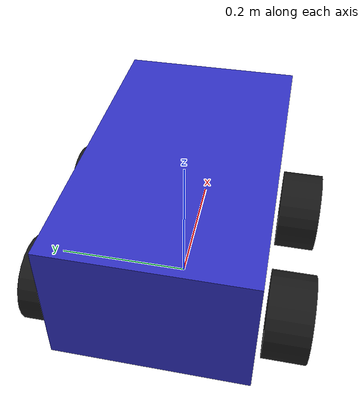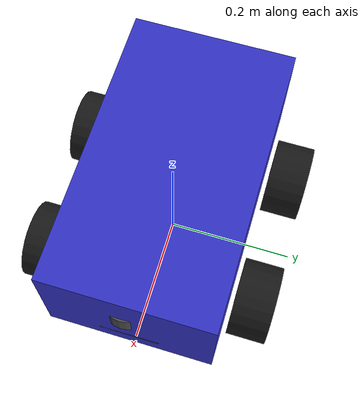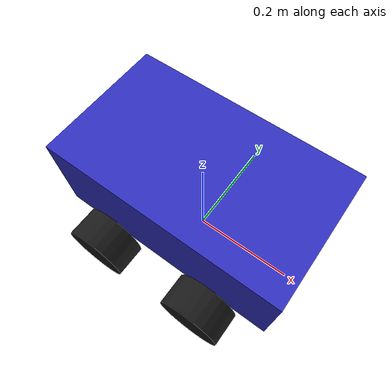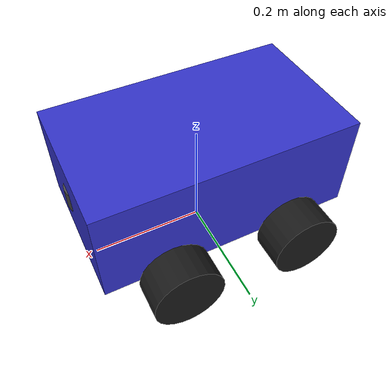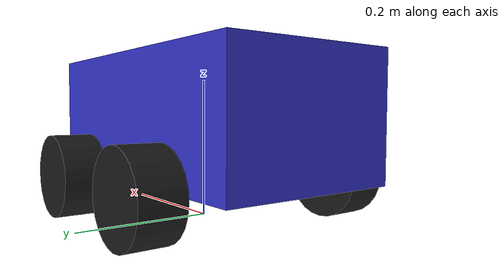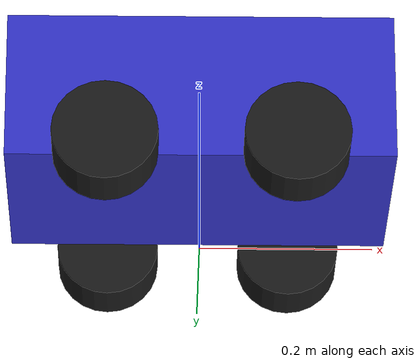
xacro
<?xml version="1.0"?>
<robot xmlns:xacro="http://www.ros.org/wiki/xacro" name="bot">

  <!-- Constants -->
  <xacro:property name="base_length" value="0.445"/>  <!-- 0.445 m = 17.5 in -->
  <xacro:property name="base_width" value="0.255"/>   <!-- 0.255 m = 10.0 in -->
  <xacro:property name="base_height" value="0.176"/>  <!-- chassis height, 0.176 m = 6.9 in -->
  <xacro:property name="ground_clearance" value="0.06"/>
  <xacro:property name="wheel_radius" value="0.06"/>  <!-- 0.06 m = 2.4 in radius (4.7 in dia) -->
  <xacro:property name="wheel_width" value="0.06"/>  <!-- 0.06 m = 2.4 in -->
  <xacro:property name="wheelbase" value="0.216"/>   <!-- front-to-rear axle spacing, measured 0.216 m = 8.5 in (2026-09-30; was a 0.33 estimate) -->
  <xacro:property name="track_width" value="0.33"/>  <!-- left-to-right wheel-centre spacing, measured 0.33 m = 13.0 in (2026-09-30; was 0.32) -->
  <xacro:property name="mass_base" value="3.545729"/>  <!-- measured 3.546 kg = 7.8 lb (2026-09-30; was 3.2) -->
  <xacro:property name="mass_wheel" value="0.2"/>   <!-- 0.2 kg = 0.44 lb each -->
  <xacro:property name="oak_width" value="0.091"/>
  <xacro:property name="oak_height" value="0.028"/>
  <xacro:property name="oak_depth" value="0.0175"/>
  <xacro:property name="oak_bottom_height" value="0.09"/>
  <xacro:property name="oak_front_x" value="${base_length/2}"/>
  <xacro:property name="chassis_front_x" value="${oak_front_x - 0.03}"/>
  <xacro:property name="lidar_radius" value="0.0385"/>
  <xacro:property name="lidar_body_height" value="0.03885"/>
  <xacro:property name="lidar_top_height" value="${oak_bottom_height + oak_height + 0.05}"/>
  <xacro:property name="lidar_plane_below_top" value="0.013"/>

  <!-- Base Link (Chassis) -->
  <link name="base_link">
    <inertial>
      <origin xyz="0 0 0" rpy="0 0 0"/>
      <mass value="${mass_base}"/>
      <inertia ixx="${mass_base/12 * (base_width*base_width + base_height*base_height)}" ixy="0" ixz="0"
               iyy="${mass_base/12 * (base_length*base_length + base_height*base_height)}" iyz="0"
               izz="${mass_base/12 * (base_length*base_length + base_width*base_width)}"/>
    </inertial>
    <visual>
      <origin xyz="0 0 ${ground_clearance + base_height/2}" rpy="0 0 0"/>
      <geometry>
        <box size="${base_length} ${base_width} ${base_height}"/>
      </geometry>
      <material name="chassis_color">
        <color rgba="0.2 0.2 0.8 1.0"/>  <!-- Blue -->
      </material>
    </visual>
    <collision name="base_collision">
      <origin xyz="0 0 ${ground_clearance + base_height/2}" rpy="0 0 0"/>
      <geometry>
        <box size="${base_length} ${base_width} ${base_height}"/>
      </geometry>
    </collision>
  </link>

  <xacro:macro name="wheel" params="prefix x_reflect y_reflect">
    <link name="${prefix}_wheel">
      <inertial>
        <origin xyz="0 0 0" rpy="0 0 0"/>
        <mass value="${mass_wheel}"/>
        <inertia ixx="0.01" ixy="0" ixz="0" iyy="0.01" iyz="0" izz="0.01"/>
      </inertial>
      <visual>
        <origin xyz="0 0 0" rpy="${pi/2} 0 0"/>
        <geometry>
          <cylinder radius="${wheel_radius}" length="${wheel_width}"/>
        </geometry>
        <material name="wheel_color">
          <color rgba="0.1 0.1 0.1 1.0"/>  <!-- Black -->
        </material>
      </visual>
      <collision>
        <origin xyz="0 0 0" rpy="${pi/2} 0 0"/>
        <geometry>
          <cylinder radius="${wheel_radius}" length="${wheel_width}"/>
        </geometry>
      </collision>
    </link>

    <joint name="${prefix}_wheel_joint" type="continuous">
      <origin xyz="${x_reflect * wheelbase/2} ${y_reflect * track_width/2} ${wheel_radius}" rpy="0 0 0"/>
      <parent link="base_link"/>
      <child link="${prefix}_wheel"/>
      <axis xyz="0 1 0"/>
      <dynamics damping="0.1" friction="0.0"/>
    </joint>

    <gazebo reference="${prefix}_wheel">
      <material>Gazebo/Black</material>
      <mu1>0.05</mu1>
      <mu2>1.0</mu2>
      <fdir1>0 0 1</fdir1>
    </gazebo>
  </xacro:macro>

  <xacro:wheel prefix="front_left" x_reflect="1" y_reflect="1"/>
  <xacro:wheel prefix="rear_left" x_reflect="-1" y_reflect="1"/>
  <xacro:wheel prefix="front_right" x_reflect="1" y_reflect="-1"/>
  <xacro:wheel prefix="rear_right" x_reflect="-1" y_reflect="-1"/>

  <!-- Lidar Link -->
  <link name="lidar_link">
    <inertial>
      <origin xyz="0 0 0" rpy="0 0 0"/>
      <mass value="0.2"/>
      <inertia ixx="0.001" ixy="0" ixz="0" iyy="0.001" iyz="0" izz="0.001"/>
    </inertial>
    <visual>
      <origin xyz="0 0 ${lidar_plane_below_top - lidar_body_height/2}" rpy="0 0 0"/>
      <geometry>
        <cylinder radius="${lidar_radius}" length="${lidar_body_height}"/>
      </geometry>
      <material name="lidar_color">
        <color rgba="0.3 0.3 0.3 1.0"/>  <!-- Gray -->
      </material>
    </visual>
    <collision>
      <origin xyz="0 0 ${lidar_plane_below_top - lidar_body_height/2}" rpy="0 0 0"/>
      <geometry>
        <cylinder radius="${lidar_radius}" length="${lidar_body_height}"/>
      </geometry>
    </collision>
  </link>

  <!-- Camera Link -->
  <link name="camera_link">
    <inertial>
      <origin xyz="0 0 0" rpy="0 0 0"/>
      <mass value="0.1"/>
      <inertia ixx="0.0001" ixy="0" ixz="0" iyy="0.0001" iyz="0" izz="0.0001"/>
    </inertial>
    <visual>
      <origin xyz="0 0 0" rpy="0 0 0"/>
      <geometry>
        <box size="${oak_depth} ${oak_width} ${oak_height}"/>
      </geometry>
      <material name="camera_color">
        <color rgba="0.4 0.4 0.4 1.0"/>  <!-- Dark gray -->
      </material>
    </visual>
    <collision>
      <origin xyz="0 0 0" rpy="0 0 0"/>
      <geometry>
        <box size="${oak_depth} ${oak_width} ${oak_height}"/>
      </geometry>
    </collision>
  </link>

  <!-- IMU Link -->
  <link name="imu_link">
    <inertial>
      <origin xyz="0 0 0" rpy="0 0 0"/>
      <mass value="0.05"/>
      <inertia ixx="0.00001" ixy="0" ixz="0" iyy="0.00001" iyz="0" izz="0.00001"/>
    </inertial>
    <visual>
      <origin xyz="0 0 0" rpy="0 0 0"/>
      <geometry>
        <box size="0.02 0.02 0.01"/>
      </geometry>
      <material name="imu_color">
        <color rgba="0.9 0.1 0.1 1.0"/>  <!-- Red -->
      </material>
    </visual>
    <collision>
      <origin xyz="0 0 0" rpy="0 0 0"/>
      <geometry>
        <box size="0.02 0.02 0.01"/>
      </geometry>
    </collision>
  </link>

  <joint name="lidar_joint" type="fixed">
    <origin xyz="${oak_front_x - 0.035} ${oak_width/2 - 0.055} ${lidar_top_height - lidar_plane_below_top}" rpy="0 0 ${pi}"/>
    <parent link="base_link"/>
    <child link="lidar_link"/>
  </joint>

  <joint name="camera_joint" type="fixed">
    <origin xyz="${oak_front_x - oak_depth/2} 0 ${oak_bottom_height + oak_height/2}" rpy="0 0 0"/>
    <parent link="base_link"/>
    <child link="camera_link"/>
  </joint>

  <joint name="imu_joint" type="fixed">
    <origin xyz="${chassis_front_x - 0.115} ${base_width/2 - 0.125} 0.094" rpy="0 0 ${pi}"/>
    <parent link="base_link"/>
    <child link="imu_link"/>
  </joint>

  <link name="ultrasonic_left"/>
  <link name="ultrasonic_right"/>
  <joint name="ultrasonic_left_joint" type="fixed">
    <origin xyz="${chassis_front_x - 0.175} ${base_width/2} 0.09" rpy="0 0 ${pi/2}"/>
    <parent link="base_link"/>
    <child link="ultrasonic_left"/>
  </joint>
  <joint name="ultrasonic_right_joint" type="fixed">
    <origin xyz="${chassis_front_x - 0.175} ${-base_width/2} 0.09" rpy="0 0 ${-pi/2}"/>
    <parent link="base_link"/>
    <child link="ultrasonic_right"/>
  </joint>

  <!-- Gazebo plugins -->
  <gazebo reference="base_link">
    <material>Gazebo/Blue</material>
    <sensor name="base_contact_sensor" type="contact">
      <contact>
        <collision>base_collision</collision>
        <topic>/bot_contacts</topic>
      </contact>
      <update_rate>30</update_rate>
    </sensor>
  </gazebo>

  <gazebo reference="imu_link">
    <sensor name="imu_sensor" type="imu">
      <gz_frame_id>imu_link</gz_frame_id>
      <always_on>true</always_on>
      <update_rate>100</update_rate>
      <topic>/imu</topic>
      <imu>
        <angular_velocity>
          <x><noise type="gaussian"><mean>0.0</mean><stddev>0.0017</stddev></noise></x>
          <y><noise type="gaussian"><mean>0.0</mean><stddev>0.0017</stddev></noise></y>
          <z><noise type="gaussian"><mean>0.0</mean><stddev>0.0017</stddev></noise></z>
        </angular_velocity>
        <linear_acceleration>
          <x><noise type="gaussian"><mean>0.0</mean><stddev>0.0104</stddev></noise></x>
          <y><noise type="gaussian"><mean>0.0</mean><stddev>0.0104</stddev></noise></y>
          <z><noise type="gaussian"><mean>0.0</mean><stddev>0.0104</stddev></noise></z>
        </linear_acceleration>
      </imu>
    </sensor>
  </gazebo>

  <gazebo>
    <plugin filename="gz-sim-diff-drive-system" name="gz::sim::systems::DiffDrive">
      <left_joint>front_left_wheel_joint</left_joint>
      <left_joint>rear_left_wheel_joint</left_joint>
      <right_joint>front_right_wheel_joint</right_joint>
      <right_joint>rear_right_wheel_joint</right_joint>
      <wheel_separation>${track_width}</wheel_separation>
      <wheel_radius>${wheel_radius}</wheel_radius>
      <max_wheel_torque>0.73</max_wheel_torque>
      <max_linear_acceleration>1.0</max_linear_acceleration>
      <topic>cmd_vel</topic>
      <odom_topic>odom</odom_topic>
      <frame_id>odom</frame_id>
      <child_frame_id>base_link</child_frame_id>
      <odom_publish_frequency>30</odom_publish_frequency>
    </plugin>
    <plugin filename="gz-sim-joint-state-publisher-system" name="gz::sim::systems::JointStatePublisher">
      <topic>joint_states</topic>
    </plugin>

    <plugin filename="gz-sim-pose-publisher-system" name="gz::sim::systems::PosePublisher">
      <publish_model_pose>true</publish_model_pose>
      <publish_link_pose>false</publish_link_pose>
      <publish_collision_pose>false</publish_collision_pose>
      <publish_visual_pose>false</publish_visual_pose>
      <publish_nested_model_pose>false</publish_nested_model_pose>
      <static_publisher>false</static_publisher>
      <update_frequency>30</update_frequency>
    </plugin>
  </gazebo>

  <!-- Lidar Sensor (simulates RPLIDAR) - gz-sim gpu_lidar -->
  <gazebo reference="lidar_link">
    <sensor name="lidar_sensor" type="gpu_lidar">
      <gz_frame_id>lidar_link</gz_frame_id>
      <always_on>true</always_on>
      <visualize>true</visualize>
      <update_rate>10</update_rate>
      <topic>scan</topic>
      <lidar>
        <scan>
          <horizontal>
            <samples>360</samples>
            <resolution>1</resolution>
            <min_angle>0</min_angle>
            <max_angle>6.283</max_angle>
          </horizontal>
        </scan>
        <range>
          <min>0.3</min>
          <max>12</max>
          <resolution>0.01</resolution>
        </range>
        <visibility_mask>4294967294</visibility_mask>
      </lidar>
    </sensor>
  </gazebo>

  <!-- Camera Sensor (simulates OAK-D) - gz-sim -->
  <gazebo reference="camera_link">
    <sensor name="camera_sensor" type="camera">
      <!-- see the lidar sensor above for why this is needed -->
      <gz_frame_id>camera_link</gz_frame_id>
      <camera>
        <horizontal_fov>1.0472</horizontal_fov>
        <image>
          <width>640</width>
          <height>480</height>
          <format>R8G8B8</format>
        </image>
        <clip>
          <near>0.02</near>
          <far>300</far>
        </clip>
      </camera>
      <always_on>true</always_on>
      <update_rate>30</update_rate>
      <visualize>true</visualize>
      <topic>camera/image_raw</topic>
    </sensor>

    <sensor name="oak_depth_sensor" type="depth_camera">
      <!-- see the lidar sensor above for why this is needed -->
      <gz_frame_id>camera_link</gz_frame_id>
      <camera>
        <horizontal_fov>1.0472</horizontal_fov>
        <image>
          <width>640</width>
          <height>480</height>
          <format>R_FLOAT32</format>
        </image>
        <clip>
          <near>0.2</near>
          <far>6.0</far>
        </clip>
        <visibility_mask>4294967294</visibility_mask>
      </camera>
      <always_on>true</always_on>
      <update_rate>15</update_rate>
      <topic>oak/depth</topic>
    </sensor>
  </gazebo>

</robot>
